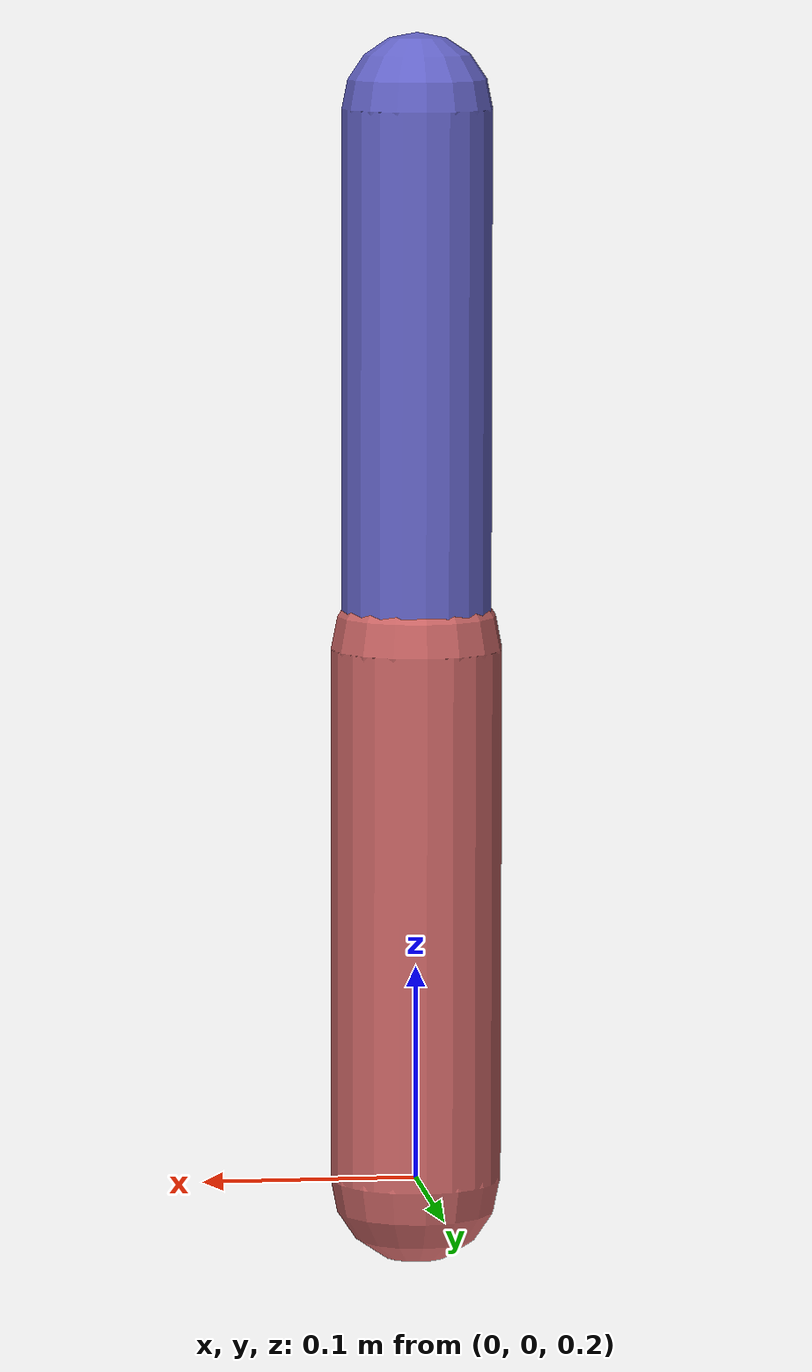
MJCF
<mujoco model="left_panel_groups">
  <compiler angle="radian" autolimits="true"/>
  <option timestep="0.01" gravity="0 0 -9.81"/>

  <worldbody>
    <light pos="0 0 2" dir="0 0 -1"/>
    <geom name="floor" type="plane" size="2 2 0.1" rgba="0.9 0.9 0.9 1"/>
    <body name="root" pos="0 0 0.2">
      <joint name="root_hinge" type="hinge" axis="0 1 0" range="-1 1" damping="0.2" group="0"/>
      <geom name="root_geom" type="capsule" fromto="0 0 0 0 0 0.25" size="0.04" rgba="0.8 0.4 0.4 1"/>
      <body name="child" pos="0 0 0.25">
        <joint name="child_hinge" type="hinge" axis="1 0 0" range="-1 1" damping="0.2" group="1"/>
        <geom name="child_geom" type="capsule" fromto="0 0 0 0 0 0.25" size="0.035" rgba="0.4 0.4 0.8 1"/>
      </body>
    </body>
  </worldbody>

  <actuator>
    <motor name="root_motor" joint="root_hinge" gear="20" ctrlrange="-1 1" group="0"/>
    <motor name="child_motor" joint="child_hinge" gear="20" ctrlrange="-1 1" group="1"/>
  </actuator>
</mujoco>
